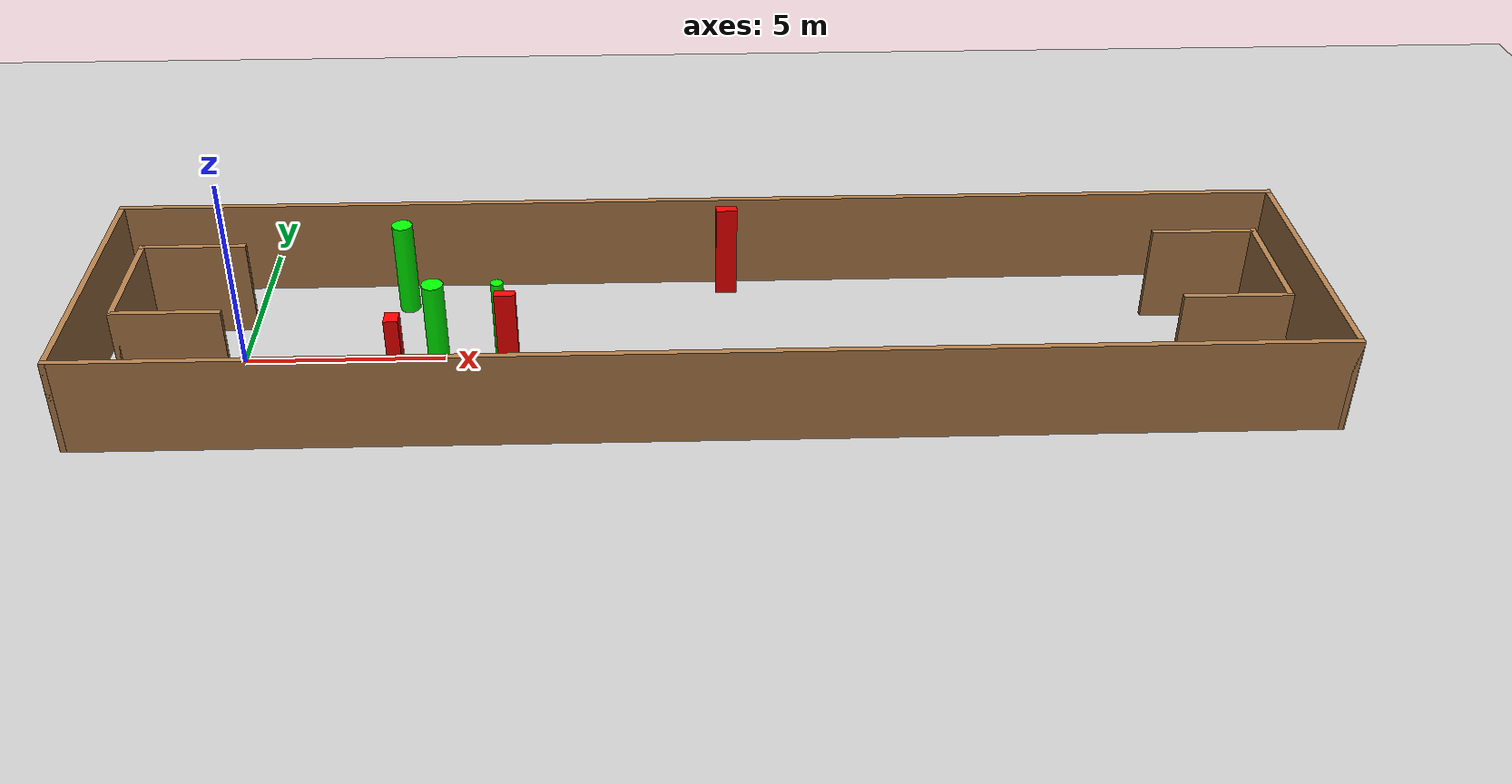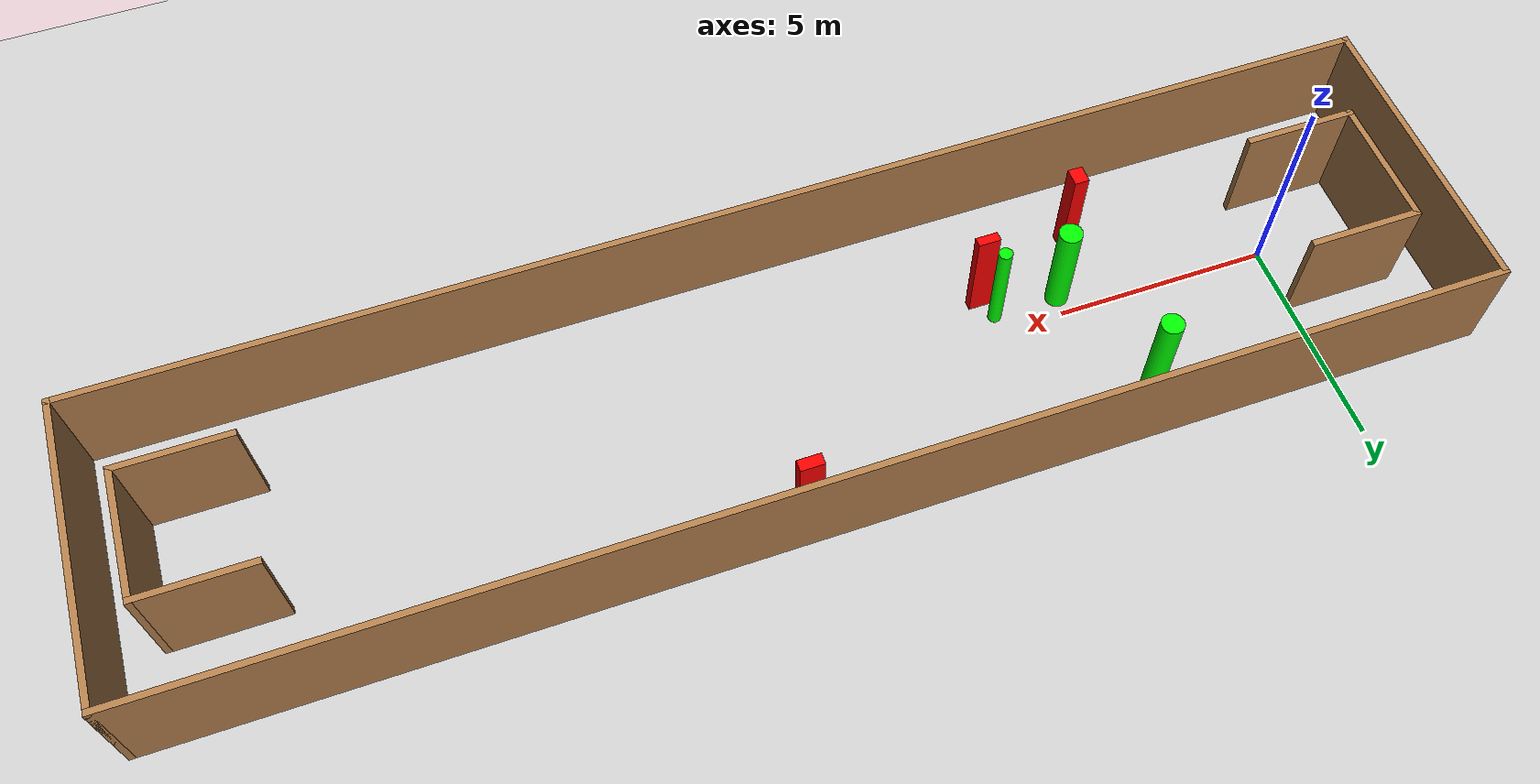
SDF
<sdf version="1.7">
 <world name="default">
  <light name="sun" type="directional">
   <pose>0 0 10 0 -0 0</pose>
   <diffuse>0.8 0.8 0.8 1</diffuse>
   <specular>0.2 0.2 0.2 1</specular>
   <attenuation>
    <range>1000</range>
    <constant>0.9</constant>
    <linear>0.01</linear>
    <quadratic>0.001</quadratic>
   </attenuation>
   <direction>-0.5 0.1 -0.9</direction>
   <spot><inner_angle>0</inner_angle><outer_angle>0</outer_angle><falloff>0</falloff></spot>
  </light>
  <model name="ground_plane">
   <static>1</static>
   <link name="link">
    <collision name="collision">
     <geometry><plane><normal>0 0 1</normal><size>100 100</size></plane></geometry>
     <surface>
      <contact><collide_bitmask>65535</collide_bitmask></contact>
      <friction><ode><mu>100</mu><mu2>50</mu2></ode></friction>
     </surface>
    </collision>
    <visual name="visual">
     <cast_shadows>0</cast_shadows>
     <geometry><plane><normal>0 0 1</normal><size>100 100</size></plane></geometry>
     <material>
      <script><uri>file://media/materials/scripts/gazebo.material</uri><name>Gazebo/Grey</name></script>
     </material>
    </visual>
   </link>
  </model>
  <gravity>0 0 -9.8</gravity>
  <magnetic_field>6e-06 2.3e-05 -4.2e-05</magnetic_field>
  <atmosphere type="adiabatic"/>
  <physics type="ode">
   <max_step_size>0.001</max_step_size>
   <real_time_factor>1</real_time_factor>
   <real_time_update_rate>1000</real_time_update_rate>
  </physics>
  <scene><ambient>0.4 0.4 0.4 1</ambient><background>0.7 0.7 0.7 1</background><shadows>1</shadows></scene>
  <spherical_coordinates>
   <surface_model>EARTH_WGS84</surface_model>
   <latitude_deg>0</latitude_deg>
   <longitude_deg>0</longitude_deg>
   <elevation>0</elevation>
   <heading_deg>0</heading_deg>
  </spherical_coordinates>
  <model name="my_base_walls">
   <link name="Wall_0">
    <collision name="Wall_0_Collision">
     <geometry><box><size>7.15 0.15 2.5</size></box></geometry>
     <pose>0 0 1.25 0 -0 0</pose>
    </collision>
    <visual name="Wall_0_Visual">
     <pose>0 0 1.25 0 -0 0</pose>
     <geometry><box><size>7.15 0.15 2.5</size></box></geometry>
     <material>
      <script><uri>file://media/materials/scripts/gazebo.material</uri><name>Gazebo/Wood</name></script>
      <ambient>1 1 1 1</ambient>
     </material>
     <meta><layer>0</layer></meta>
    </visual>
    <pose>-15 0 0 0 -0 1.5708</pose>
   </link>
   <link name="Wall_10">
    <collision name="Wall_10_Collision">
     <geometry><box><size>2.65 0.15 2.5</size></box></geometry>
     <pose>0 0 1.25 0 -0 0</pose>
    </collision>
    <visual name="Wall_10_Visual">
     <pose>0 0 1.25 0 -0 0</pose>
     <geometry><box><size>2.65 0.15 2.5</size></box></geometry>
     <material>
      <script><uri>file://media/materials/scripts/gazebo.material</uri><name>Gazebo/Wood</name></script>
      <ambient>1 1 1 1</ambient>
     </material>
     <meta><layer>0</layer></meta>
    </visual>
    <pose>-12.75 -1.5 0 0 -0 0</pose>
   </link>
   <link name="Wall_12">
    <collision name="Wall_12_Collision">
     <geometry><box><size>2.65 0.15 2.5</size></box></geometry>
     <pose>0 0 1.25 0 -0 0</pose>
    </collision>
    <visual name="Wall_12_Visual">
     <pose>0 0 1.25 0 -0 0</pose>
     <geometry><box><size>2.65 0.15 2.5</size></box></geometry>
     <material>
      <script><uri>file://media/materials/scripts/gazebo.material</uri><name>Gazebo/Wood</name></script>
      <ambient>1 1 1 1</ambient>
     </material>
     <meta><layer>0</layer></meta>
    </visual>
    <pose>-12.75 1.5 0 0 -0 0</pose>
   </link>
   <link name="Wall_14">
    <collision name="Wall_14_Collision">
     <geometry><box><size>3.15 0.15 2.5</size></box></geometry>
     <pose>0 0 1.25 0 -0 0</pose>
    </collision>
    <visual name="Wall_14_Visual">
     <pose>0 0 1.25 0 -0 0</pose>
     <geometry><box><size>3.15 0.15 2.5</size></box></geometry>
     <material>
      <script><uri>file://media/materials/scripts/gazebo.material</uri><name>Gazebo/Wood</name></script>
      <ambient>1 1 1 1</ambient>
     </material>
     <meta><layer>0</layer></meta>
    </visual>
    <pose>14 0 0 0 -0 -1.5708</pose>
   </link>
   <link name="Wall_15">
    <collision name="Wall_15_Collision">
     <geometry><box><size>2.65 0.15 2.5</size></box></geometry>
     <pose>0 0 1.25 0 -0 0</pose>
    </collision>
    <visual name="Wall_15_Visual">
     <pose>0 0 1.25 0 -0 0</pose>
     <geometry><box><size>2.65 0.15 2.5</size></box></geometry>
     <material>
      <script><uri>file://media/materials/scripts/gazebo.material</uri><name>Gazebo/Wood</name></script>
      <ambient>1 1 1 1</ambient>
     </material>
     <meta><layer>0</layer></meta>
    </visual>
    <pose>12.75 -1.5 0 0 -0 3.14159</pose>
   </link>
   <link name="Wall_17">
    <collision name="Wall_17_Collision">
     <geometry><box><size>2.65 0.15 2.5</size></box></geometry>
     <pose>0 0 1.25 0 -0 0</pose>
    </collision>
    <visual name="Wall_17_Visual">
     <pose>0 0 1.25 0 -0 0</pose>
     <geometry><box><size>2.65 0.15 2.5</size></box></geometry>
     <material>
      <script><uri>file://media/materials/scripts/gazebo.material</uri><name>Gazebo/Wood</name></script>
      <ambient>1 1 1 1</ambient>
     </material>
     <meta><layer>0</layer></meta>
    </visual>
    <pose>12.75 1.5 0 0 -0 3.14159</pose>
   </link>
   <link name="Wall_2">
    <collision name="Wall_2_Collision">
     <geometry><box><size>30.15 0.15 2.5</size></box></geometry>
     <pose>0 0 1.25 0 -0 0</pose>
    </collision>
    <visual name="Wall_2_Visual">
     <pose>0 0 1.25 0 -0 0</pose>
     <geometry><box><size>30.15 0.15 2.5</size></box></geometry>
     <material>
      <script><uri>file://media/materials/scripts/gazebo.material</uri><name>Gazebo/Wood</name></script>
      <ambient>1 1 1 1</ambient>
     </material>
     <meta><layer>0</layer></meta>
    </visual>
    <pose>-0 -3.5 0 0 -0 0</pose>
   </link>
   <link name="Wall_4">
    <collision name="Wall_4_Collision">
     <geometry><box><size>30.15 0.15 2.5</size></box></geometry>
     <pose>0 0 1.25 0 -0 0</pose>
    </collision>
    <visual name="Wall_4_Visual">
     <pose>0 0 1.25 0 -0 0</pose>
     <geometry><box><size>30.15 0.15 2.5</size></box></geometry>
     <material>
      <script><uri>file://media/materials/scripts/gazebo.material</uri><name>Gazebo/Wood</name></script>
      <ambient>1 1 1 1</ambient>
     </material>
     <meta><layer>0</layer></meta>
    </visual>
    <pose>-0 3.5 0 0 -0 0</pose>
   </link>
   <link name="Wall_6">
    <collision name="Wall_6_Collision">
     <geometry><box><size>7.15 0.15 2.5</size></box></geometry>
     <pose>0 0 1.25 0 -0 0</pose>
    </collision>
    <visual name="Wall_6_Visual">
     <pose>0 0 1.25 0 -0 0</pose>
     <geometry><box><size>7.15 0.15 2.5</size></box></geometry>
     <material>
      <script><uri>file://media/materials/scripts/gazebo.material</uri><name>Gazebo/Wood</name></script>
      <ambient>1 1 1 1</ambient>
     </material>
     <meta><layer>0</layer></meta>
    </visual>
    <pose>15 0 0 0 -0 -1.5708</pose>
   </link>
   <link name="Wall_9">
    <collision name="Wall_9_Collision">
     <geometry><box><size>3.15 0.15 2.5</size></box></geometry>
     <pose>0 0 1.25 0 -0 0</pose>
    </collision>
    <visual name="Wall_9_Visual">
     <pose>0 0 1.25 0 -0 0</pose>
     <geometry><box><size>3.15 0.15 2.5</size></box></geometry>
     <material>
      <script><uri>file://media/materials/scripts/gazebo.material</uri><name>Gazebo/Wood</name></script>
      <ambient>1 1 1 1</ambient>
     </material>
     <meta><layer>0</layer></meta>
    </visual>
    <pose>-14 0 0 0 -0 -1.5708</pose>
   </link>
   <static>1</static>
   <pose>11.5 0 0 0 -0 0</pose>
  </model>
  <model name="cylinder1">
   <static>1</static>
   <link name="link">
    <inertial>
     <mass>1</mass>
     <inertia><ixx>0.5</ixx><ixy>0</ixy><ixz>0</ixz><iyy>0.5</iyy><iyz>0</iyz><izz>1</izz></inertia>
    </inertial>
    <collision name="collision">
     <geometry><cylinder><radius>0.26228838211839484</radius><length>2.5</length></cylinder></geometry>
    </collision>
    <visual name="visual">
     <geometry><cylinder><radius>0.26228838211839484</radius><length>2.5</length></cylinder></geometry>
     <material>
      <ambient>0 1 0 1</ambient>
      <diffuse>0 1 0 1</diffuse>
      <specular>0.1 0.1 0.1 1</specular>
      <emissive>0 0 0 0</emissive>
     </material>
    </visual>
   </link>
   <pose>3.863326109440136 2.3819888712108206 1.25 0 0 0</pose>
  </model>
  <model name="cylinder2">
   <static>1</static>
   <link name="link">
    <inertial>
     <mass>1</mass>
     <inertia><ixx>0.5</ixx><ixy>0</ixy><ixz>0</ixz><iyy>0.5</iyy><iyz>0</iyz><izz>1</izz></inertia>
    </inertial>
    <collision name="collision">
     <geometry><cylinder><radius>0.15582480069822663</radius><length>2.5</length></cylinder></geometry>
    </collision>
    <visual name="visual">
     <geometry><cylinder><radius>0.15582480069822663</radius><length>2.5</length></cylinder></geometry>
     <material>
      <ambient>0 1 0 1</ambient>
      <diffuse>0 1 0 1</diffuse>
      <specular>0.1 0.1 0.1 1</specular>
      <emissive>0 0 0 0</emissive>
     </material>
    </visual>
   </link>
   <pose>6.480271079649219 -0.43985500864680205 1.25 0 0 0</pose>
  </model>
  <model name="cylinder3">
   <static>1</static>
   <link name="link">
    <inertial>
     <mass>1</mass>
     <inertia><ixx>0.5</ixx><ixy>0</ixy><ixz>0</ixz><iyy>0.5</iyy><iyz>0</iyz><izz>1</izz></inertia>
    </inertial>
    <collision name="collision">
     <geometry><cylinder><radius>0.26596685084452815</radius><length>2.5</length></cylinder></geometry>
    </collision>
    <visual name="visual">
     <geometry><cylinder><radius>0.26596685084452815</radius><length>2.5</length></cylinder></geometry>
     <material>
      <ambient>0 1 0 1</ambient>
      <diffuse>0 1 0 1</diffuse>
      <specular>0.1 0.1 0.1 1</specular>
      <emissive>0 0 0 0</emissive>
     </material>
    </visual>
   </link>
   <pose>4.92308953099279 -0.4700783657595444 1.25 0 0 0</pose>
  </model>
  <model name="box1">
   <static>1</static>
   <link name="link">
    <inertial>
     <mass>1</mass>
     <inertia><ixx>0.083</ixx><ixy>0</ixy><ixz>0</ixz><iyy>0.083</iyy><iyz>0</iyz><izz>0.083</izz></inertia>
    </inertial>
    <collision name="collision">
     <geometry><box><size>0.5427694542369511 0.2659951076714713 2.5</size></box></geometry>
    </collision>
    <visual name="visual">
     <geometry><box><size>0.5427694542369511 0.2659951076714713 2.5</size></box></geometry>
     <material>
      <ambient>1 0 0 1</ambient>
      <diffuse>1 0 0 1</diffuse>
      <specular>0.1 0.1 0.1 1</specular>
      <emissive>0 0 0 0</emissive>
     </material>
    </visual>
    <sensor name="my_contact" type="contact">
     <contact><collision>box_collision</collision><topic>__default_topic__</topic></contact>
    </sensor>
   </link>
   <pose>12.173946488517338 2.982438875089934 1.25 0 0 0</pose>
  </model>
  <model name="box2">
   <static>1</static>
   <link name="link">
    <inertial>
     <mass>1</mass>
     <inertia><ixx>0.083</ixx><ixy>0</ixy><ixz>0</ixz><iyy>0.083</iyy><iyz>0</iyz><izz>0.083</izz></inertia>
    </inertial>
    <collision name="collision">
     <geometry><box><size>0.3421414948905001 0.40944602429637716 2.5</size></box></geometry>
    </collision>
    <visual name="visual">
     <geometry><box><size>0.3421414948905001 0.40944602429637716 2.5</size></box></geometry>
     <material>
      <ambient>1 0 0 1</ambient>
      <diffuse>1 0 0 1</diffuse>
      <specular>0.1 0.1 0.1 1</specular>
      <emissive>0 0 0 0</emissive>
     </material>
    </visual>
    <sensor name="my_contact" type="contact">
     <contact><collision>box_collision</collision><topic>__default_topic__</topic></contact>
    </sensor>
   </link>
   <pose>4.117597282500094 -1.870924440105906 1.25 0 0 0</pose>
  </model>
  <model name="box3">
   <static>1</static>
   <link name="link">
    <inertial>
     <mass>1</mass>
     <inertia><ixx>0.083</ixx><ixy>0</ixy><ixz>0</ixz><iyy>0.083</iyy><iyz>0</iyz><izz>0.083</izz></inertia>
    </inertial>
    <collision name="collision">
     <geometry><box><size>0.5148068638136565 0.21795097274884603 2.5</size></box></geometry>
    </collision>
    <visual name="visual">
     <geometry><box><size>0.5148068638136565 0.21795097274884603 2.5</size></box></geometry>
     <material>
      <ambient>1 0 0 1</ambient>
      <diffuse>1 0 0 1</diffuse>
      <specular>0.1 0.1 0.1 1</specular>
      <emissive>0 0 0 0</emissive>
     </material>
    </visual>
    <sensor name="my_contact" type="contact">
     <contact><collision>box_collision</collision><topic>__default_topic__</topic></contact>
    </sensor>
   </link>
   <pose>6.694932285850818 -0.9186670658868055 1.25 0 0 0</pose>
  </model>
 </world>
</sdf>
